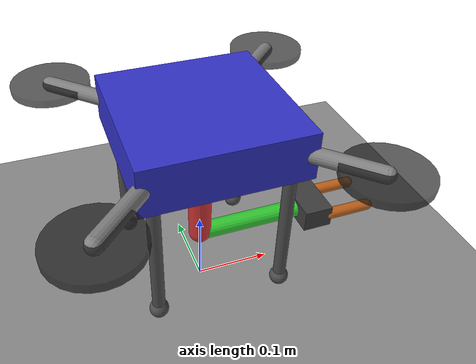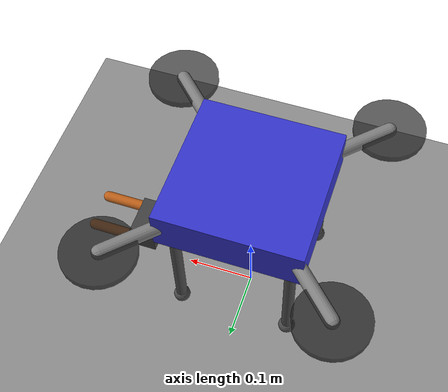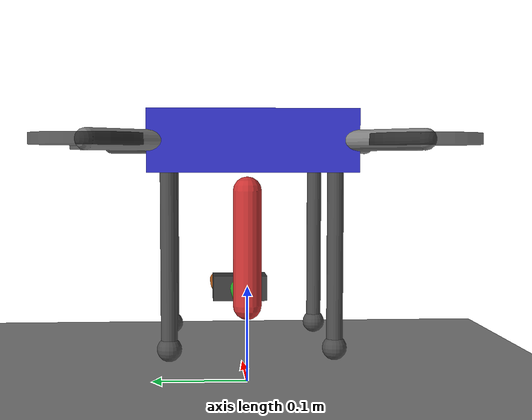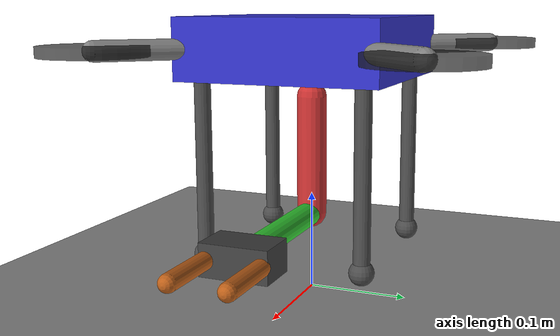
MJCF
<mujoco model="am_scene">

    <compiler angle="radian" coordinate="local"/>
    <option gravity="0 0 -9.81" timestep="0.002"/>

    <visual>
        <headlight ambient="0.2 0.2 0.2" diffuse="0.4 0.4 0.4" specular="0.0 0.0 0.0"/>
        <quality shadowsize="8192"/>
        <map znear="0.005" zfar="100"/>
        <rgba haze="0.15 0.25 0.35 1"/>
    </visual>

    <asset>
        <!-- Fine grid floor — tight spacing helps perceive height and lateral speed -->
        <texture name="grid" type="2d" builtin="checker" width="1024" height="1024"
                 rgb1="0.45 0.45 0.45" rgb2="0.65 0.65 0.65"/>
        <material name="grid_mat" texture="grid" texrepeat="5 5" texuniform="true"
                  reflectance="0.05"/>
        <!-- Sky gradient: bright horizon → deep blue zenith -->
        <texture name="sky" type="skybox" builtin="gradient"
                 rgb1="0.75 0.88 1.0" rgb2="0.08 0.18 0.45" width="512" height="512"/>
    </asset>

    <default>
        <joint damping="0.02"/>
        <geom contype="1" conaffinity="1"/>
        <default class="visual">
            <geom contype="0" conaffinity="0" mass="0"/>
        </default>
    </default>

    <worldbody>

        <!-- Ground: fine grid gives strong height/speed perception cues -->
        <geom name="ground" type="plane" size="30 30 0.1" material="grid_mat"/>

        <!-- Height reference poles at 1 m intervals -->
        <!-- 1m / 3m / 5m band labels baked into colours (red/orange/green) -->

        <!-- Cameras -->
        <camera name="track" mode="trackcom" pos="3 -3 2" xyaxes="1 1 0 -0.4 0.4 1"/>
        <camera name="side"  mode="trackcom" pos="0 -5 1.5" xyaxes="1 0 0 0 0.3 1"/>
        <camera name="fixed" pos="4 4 3" xyaxes="-1 1 0 -0.5 -0.5 1"/>
        <!-- Fixed side camera: perpendicular to xz motion plane, centred on reach trajectory -->
        <!-- pos = midpoint(HOVER_START, EE_TARGET) shifted 4 m along -y               -->
        <!-- xyaxes: camera-right = world +x, camera-up = world +z → looks along +y    -->
        <camera name="scene_cam" pos="0.5 -4.0 1.5" xyaxes="1 0 0 0 0 1"/>

        <!-- Sun-like directional light with shadows -->
        <light name="main_light"
           pos="0 0 5"
           dir="0 0 -1"
           diffuse="0.8 0.8 0.8"
           specular="0.5 0.5 0.5"
           ambient="0.2 0.2 0.2"
           directional="true"
           castshadow="true"/>

        <!-- Target marker -->

        <!-- ===== Quadrotor Base ===== -->
        <body name="base" pos="0 0 0.25">
            <joint name="free_joint" type="free"/>
            <inertial pos="0 0 0" mass="1.5" diaginertia="0.008 0.008 0.015"/>

            <!-- Main body -->
            <geom name="base_body" type="box" size="0.1 0.1 0.03" rgba="0.2 0.2 0.8 1"
                  contype="1" conaffinity="1" mass="0"/>

            <!-- X configuration arms (visual, no mass) -->
            <geom type="capsule" fromto="0 0 0 0.15 0.15 0" size="0.01" class="visual"/>
            <geom type="capsule" fromto="0 0 0 -0.15 0.15 0" size="0.01" class="visual"/>
            <geom type="capsule" fromto="0 0 0 -0.15 -0.15 0" size="0.01" class="visual"/>
            <geom type="capsule" fromto="0 0 0 0.15 -0.15 0" size="0.01" class="visual"/>

            <!-- Propellers (visual) -->
            <geom type="cylinder" pos="0.15 0.15 0" size="0.05 0.005" rgba="0.1 0.1 0.1 0.7" class="visual"/>
            <geom type="cylinder" pos="-0.15 0.15 0" size="0.05 0.005" rgba="0.1 0.1 0.1 0.7" class="visual"/>
            <geom type="cylinder" pos="-0.15 -0.15 0" size="0.05 0.005" rgba="0.1 0.1 0.1 0.7" class="visual"/>
            <geom type="cylinder" pos="0.15 -0.15 0" size="0.05 0.005" rgba="0.1 0.1 0.1 0.7" class="visual"/>

            <!-- Landing legs (visual, no mass) -->
            <geom type="capsule" fromto="0.08 0.08 -0.03 0.08 0.08 -0.20" size="0.008" rgba="0.3 0.3 0.3 1" class="visual"/>
            <geom type="capsule" fromto="-0.08 0.08 -0.03 -0.08 0.08 -0.20" size="0.008" rgba="0.3 0.3 0.3 1" class="visual"/>
            <geom type="capsule" fromto="-0.08 -0.08 -0.03 -0.08 -0.08 -0.20" size="0.008" rgba="0.3 0.3 0.3 1" class="visual"/>
            <geom type="capsule" fromto="0.08 -0.08 -0.03 0.08 -0.08 -0.20" size="0.008" rgba="0.3 0.3 0.3 1" class="visual"/>
            <!-- Landing feet (contact with ground) -->
            <geom type="sphere" pos="0.08 0.08 -0.20" size="0.012" rgba="0.3 0.3 0.3 1" mass="0"/>
            <geom type="sphere" pos="-0.08 0.08 -0.20" size="0.012" rgba="0.3 0.3 0.3 1" mass="0"/>
            <geom type="sphere" pos="-0.08 -0.08 -0.20" size="0.012" rgba="0.3 0.3 0.3 1" mass="0"/>
            <geom type="sphere" pos="0.08 -0.08 -0.20" size="0.012" rgba="0.3 0.3 0.3 1" mass="0"/>

            <!-- Platform site for force application -->
            <site name="platform_site" pos="0 0 0" size="0.01"/>

            <!-- ===== Robot Arm ===== -->
            <body name="link1" pos="0 0 -0.05">
                <joint name="joint1" type="hinge" axis="0 1 0" damping="0.02"/>
                <inertial pos="0 0 -0.06" mass="0.15" diaginertia="0.0002 0.0002 0.00005"/>

                <!-- Vertical link going down -->
                <geom name="link1_geom" type="capsule" fromto="0 0 0 0 0 -0.12"
                      size="0.015" rgba="0.8 0.2 0.2 1" mass="0"/>

                <body name="link2" pos="0 0 -0.12">
                    <joint name="joint2" type="hinge" axis="0 1 0" damping="0.02"/>
                    <inertial pos="0.08 0 0" mass="0.12" diaginertia="0.00015 0.00015 0.00003"/>

                    <!-- Horizontal link (90 deg bend) -->
                    <geom name="link2_geom" type="capsule" fromto="0 0 0 0.16 0 0"
                          size="0.012" rgba="0.2 0.8 0.2 1" mass="0"/>

                    <!-- ===== Gripper ===== -->
                    <body name="ee" pos="0.16 0 0">
                        <inertial pos="0 0 0" mass="0.05"
                                  diaginertia="0.00005 0.00008 0.00008"/>

                        <!-- Palm -->
                        <geom name="palm_geom" type="box" size="0.02 0.032 0.015"
                              rgba="0.25 0.25 0.25 1"
                              friction="1.0 0.05 0.005"/>

                        <!-- Left finger: slides along y-axis, range 0=open → -0.024=closed -->
                        <body name="finger_left" pos="0.02 0.026 0">
                            <joint name="gripper_left_joint" type="slide" axis="0 1 0"
                                   range="-0.024 0" damping="2.0"/>
                            <inertial pos="0.028 0 0" mass="0.025"
                                      diaginertia="0.000010 0.000015 0.000015"/>
                            <geom name="finger_left_geom" type="capsule"
                                  fromto="0 0 0 0.058 0 0" size="0.008"
                                  rgba="0.75 0.38 0.1 1"
                                  friction="1.8 0.12 0.01"
                                  condim="4" solimp="0.9 0.95 0.001" solref="0.02 1"/>
                        </body>

                        <!-- Right finger: slides along y-axis, range 0=open → +0.024=closed -->
                        <body name="finger_right" pos="0.02 -0.026 0">
                            <joint name="gripper_right_joint" type="slide" axis="0 1 0"
                                   range="0 0.024" damping="2.0"/>
                            <inertial pos="0.028 0 0" mass="0.025"
                                      diaginertia="0.000010 0.000015 0.000015"/>
                            <geom name="finger_right_geom" type="capsule"
                                  fromto="0 0 0 0.058 0 0" size="0.008"
                                  rgba="0.75 0.38 0.1 1"
                                  friction="1.8 0.12 0.01"
                                  condim="4" solimp="0.9 0.95 0.001" solref="0.02 1"/>
                        </body>

                        <!-- Site between fingertips (transparent – used by scripts only) -->
                        <site name="end_effector" pos="0.078 0 0" size="0.008"
                              rgba="0 0 0 0" type="sphere"/>
                    </body>
                </body>
            </body>

        </body>

    </worldbody>

    <!-- Actuators: joint motors; platform force/torque via xfrc_applied -->
    <!-- Gripper convention (prismatic): gripper_left ctrl < 0 = close; gripper_right ctrl > 0 = close -->
    <actuator>
        <motor name="joint1_torque"  joint="joint1"              gear="1" ctrllimited="true" ctrlrange="-5 5"/>
        <motor name="joint2_torque"  joint="joint2"              gear="1" ctrllimited="true" ctrlrange="-5 5"/>
        <motor name="gripper_left"   joint="gripper_left_joint"  gear="1" ctrllimited="true" ctrlrange="-10 1"/>
        <motor name="gripper_right"  joint="gripper_right_joint" gear="1" ctrllimited="true" ctrlrange="-1 10"/>
    </actuator>

</mujoco>
